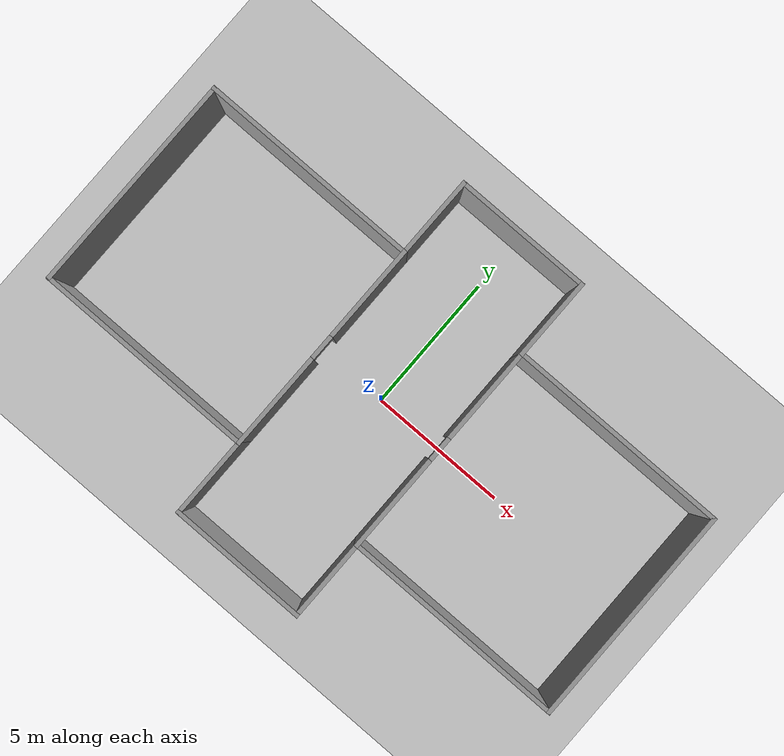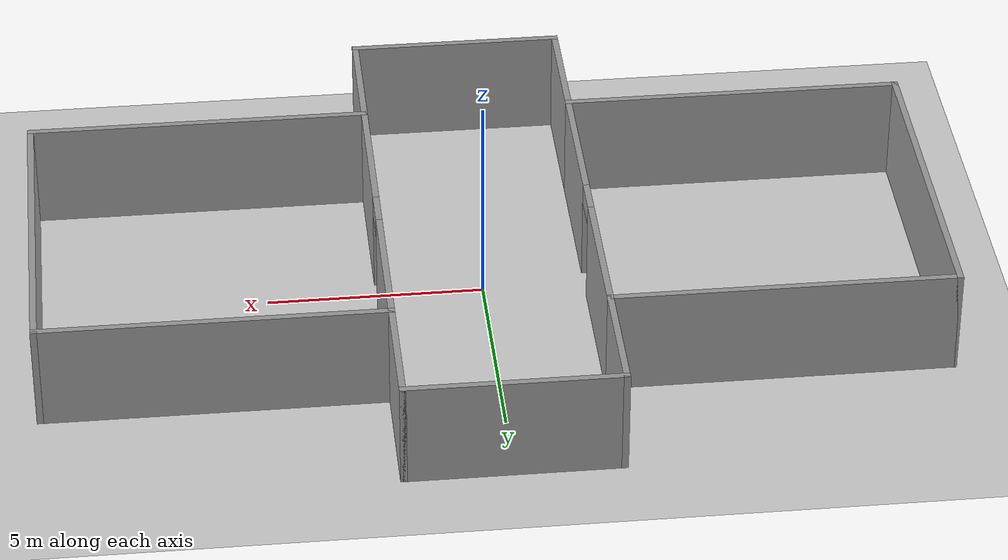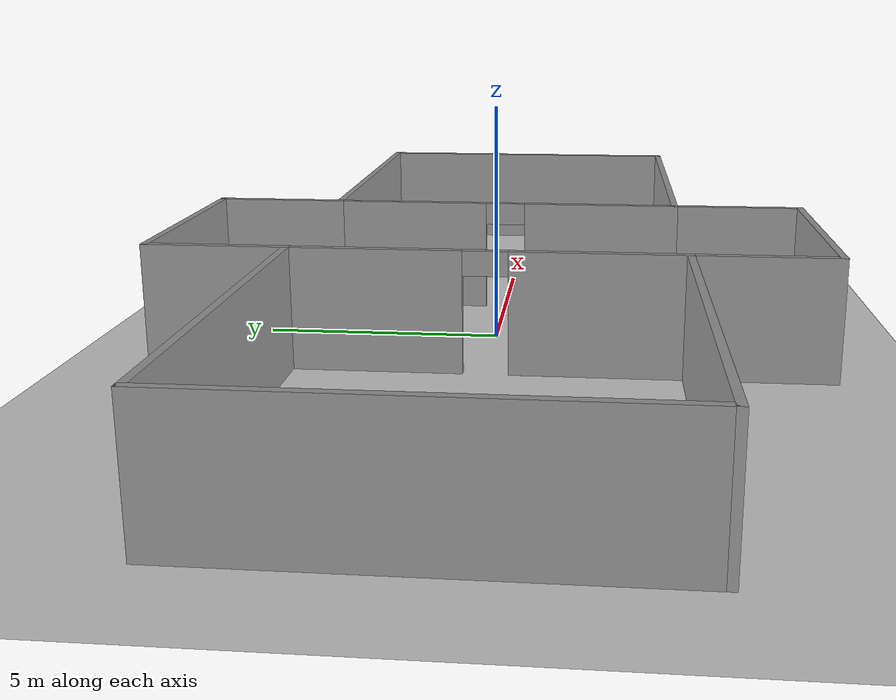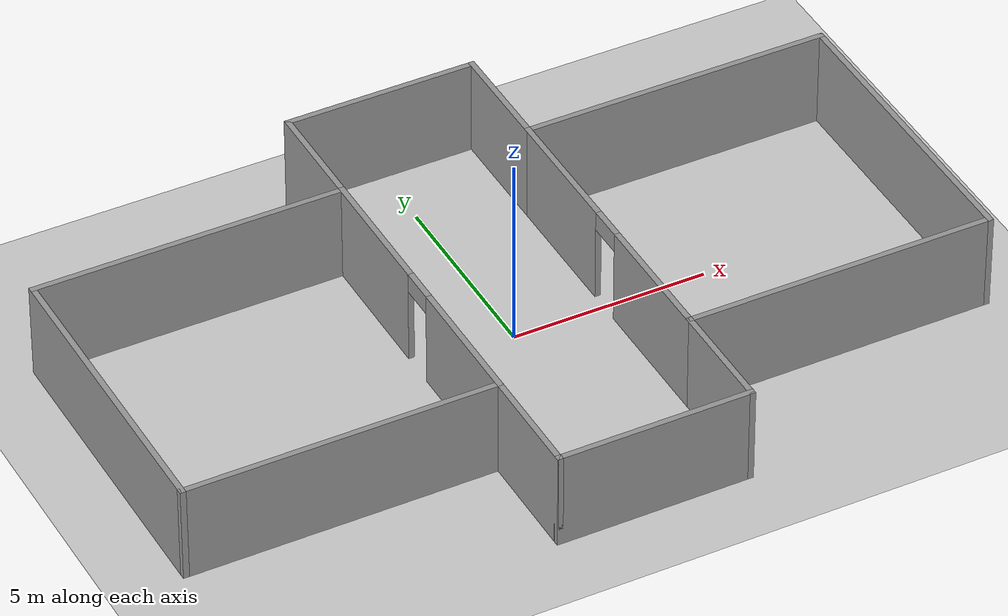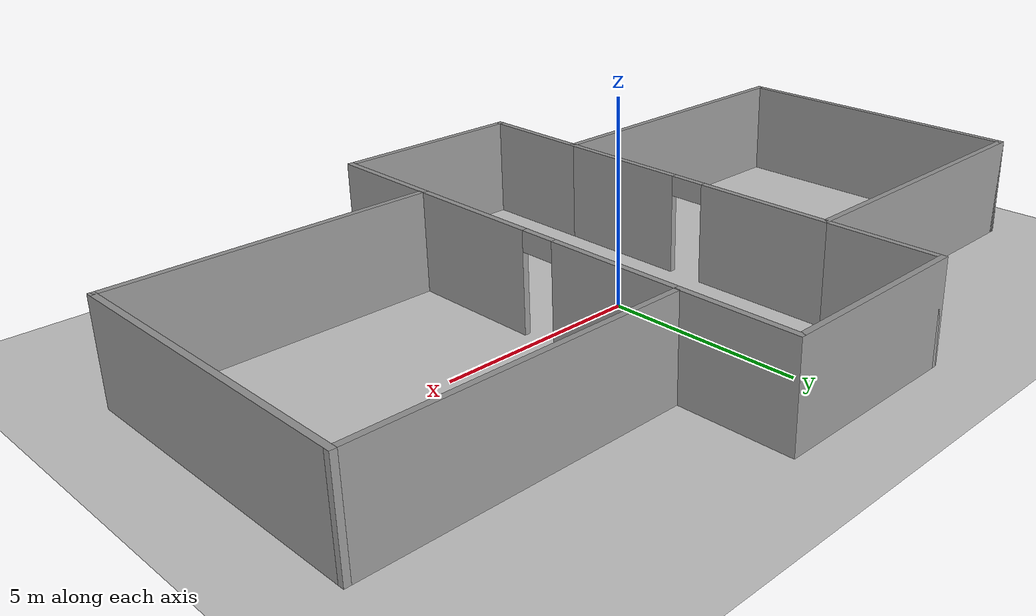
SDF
<sdf version="1.6">
 <world name="default">
  <light name="sun" type="directional">
   <pose>0 0 10 0 -0 0</pose>
   <diffuse>0.8 0.8 0.8 1</diffuse>
   <specular>0.2 0.2 0.2 1</specular>
   <attenuation>
    <range>1000</range>
    <constant>0.9</constant>
    <linear>0.01</linear>
    <quadratic>0.001</quadratic>
   </attenuation>
   <direction>-0.5 0.1 -0.9</direction>
  </light>
  <model name="ground_plane">
   <static>1</static>
   <link name="link">
    <collision name="collision">
     <geometry><plane><normal>0 0 1</normal><size>100 100</size></plane></geometry>
     <surface>
      <contact><collide_bitmask>65535</collide_bitmask></contact>
      <friction><ode><mu>100</mu><mu2>50</mu2></ode></friction>
     </surface>
    </collision>
    <visual name="visual">
     <cast_shadows>0</cast_shadows>
     <geometry><plane><normal>0 0 1</normal><size>100 100</size></plane></geometry>
     <material>
      <script><uri>file://media/materials/scripts/gazebo.material</uri><name>Gazebo/Grey</name></script>
     </material>
    </visual>
   </link>
  </model>
  <gravity>0 0 -9.8</gravity>
  <magnetic_field>6e-06 2.3e-05 -4.2e-05</magnetic_field>
  <atmosphere type="adiabatic"/>
  <physics name="default_physics" default="0" type="ode">
   <max_step_size>0.001</max_step_size>
   <real_time_factor>1</real_time_factor>
   <real_time_update_rate>1000</real_time_update_rate>
  </physics>
  <scene><ambient>0.4 0.4 0.4 1</ambient><background>0.7 0.7 0.7 1</background><shadows>1</shadows></scene>
  <audio><device>default</device></audio>
  <spherical_coordinates>
   <surface_model>EARTH_WGS84</surface_model>
   <latitude_deg>0</latitude_deg>
   <longitude_deg>0</longitude_deg>
   <elevation>0</elevation>
   <heading_deg>0</heading_deg>
  </spherical_coordinates>
  <model name="gazebo_SAGAT_prelim">
   <link name="Wall_11">
    <collision name="Wall_11_Collision">
     <geometry><box><size>3 0.15 2.5</size></box></geometry>
     <pose>0 0 1.25 0 -0 0</pose>
    </collision>
    <visual name="Wall_11_Visual">
     <pose>0 0 1.25 0 -0 0</pose>
     <geometry><box><size>3 0.15 2.5</size></box></geometry>
     <material>
      <script><uri>file://media/materials/scripts/gazebo.material</uri><name>Gazebo/Grey</name></script>
      <ambient>1 1 1 1</ambient>
     </material>
     <meta><layer>0</layer></meta>
    </visual>
    <pose>-2.425 -5.35 0 0 -0 -1.5708</pose>
   </link>
   <link name="Wall_12">
    <collision name="Wall_12_Collision">
     <geometry><box><size>5 0.15 2.5</size></box></geometry>
     <pose>0 0 1.25 0 -0 0</pose>
    </collision>
    <visual name="Wall_12_Visual">
     <pose>0 0 1.25 0 -0 0</pose>
     <geometry><box><size>5 0.15 2.5</size></box></geometry>
     <material>
      <script><uri>file://media/materials/scripts/gazebo.material</uri><name>Gazebo/Grey</name></script>
      <ambient>1 1 1 1</ambient>
     </material>
     <meta><layer>0</layer></meta>
    </visual>
    <pose>-0 -6.775 0 0 -0 0</pose>
   </link>
   <link name="Wall_13">
    <collision name="Wall_13_Collision">
     <geometry><box><size>3 0.15 2.5</size></box></geometry>
     <pose>0 0 1.25 0 -0 0</pose>
    </collision>
    <visual name="Wall_13_Visual">
     <pose>0 0 1.25 0 -0 0</pose>
     <geometry><box><size>3 0.15 2.5</size></box></geometry>
     <material>
      <script><uri>file://media/materials/scripts/gazebo.material</uri><name>Gazebo/Grey</name></script>
      <ambient>1 1 1 1</ambient>
     </material>
     <meta><layer>0</layer></meta>
    </visual>
    <pose>2.425 -5.35 0 0 -0 1.5708</pose>
   </link>
   <link name="Wall_15">
    <collision name="Wall_15_Collision">
     <geometry><box><size>8 0.15 2.5</size></box></geometry>
     <pose>0 0 1.25 0 -0 0</pose>
    </collision>
    <visual name="Wall_15_Visual">
     <pose>0 0 1.25 0 -0 0</pose>
     <geometry><box><size>8 0.15 2.5</size></box></geometry>
     <material>
      <script><uri>file://media/materials/scripts/gazebo.material</uri><name>Gazebo/Grey</name></script>
      <ambient>1 1 1 1</ambient>
     </material>
     <meta><layer>0</layer></meta>
    </visual>
    <pose>6.35 -3.925 0 0 -0 0</pose>
   </link>
   <link name="Wall_16">
    <collision name="Wall_16_Collision">
     <geometry><box><size>8 0.15 2.5</size></box></geometry>
     <pose>0 0 1.25 0 -0 0</pose>
    </collision>
    <visual name="Wall_16_Visual">
     <pose>0 0 1.25 0 -0 0</pose>
     <geometry><box><size>8 0.15 2.5</size></box></geometry>
     <material>
      <script><uri>file://media/materials/scripts/gazebo.material</uri><name>Gazebo/Grey</name></script>
      <ambient>1 1 1 1</ambient>
     </material>
     <meta><layer>0</layer></meta>
    </visual>
    <pose>10.275 0 0 0 -0 1.5708</pose>
   </link>
   <link name="Wall_17">
    <collision name="Wall_17_Collision">
     <geometry><box><size>8 0.15 2.5</size></box></geometry>
     <pose>0 0 1.25 0 -0 0</pose>
    </collision>
    <visual name="Wall_17_Visual">
     <pose>0 0 1.25 0 -0 0</pose>
     <geometry><box><size>8 0.15 2.5</size></box></geometry>
     <material>
      <script><uri>file://media/materials/scripts/gazebo.material</uri><name>Gazebo/Grey</name></script>
      <ambient>1 1 1 1</ambient>
     </material>
     <meta><layer>0</layer></meta>
    </visual>
    <pose>6.35 3.925 0 0 -0 3.14159</pose>
   </link>
   <link name="Wall_18">
    <pose>2.425 0 0 0 -0 -1.5708</pose>
    <visual name="Wall_18_Visual_0">
     <pose>-2.22426 0 1.25 0 -0 0</pose>
     <geometry><box><size>3.55147 0.15 2.5</size></box></geometry>
     <material>
      <script><uri>file://media/materials/scripts/gazebo.material</uri><name>Gazebo/Grey</name></script>
      <ambient>1 1 1 1</ambient>
     </material>
     <meta><layer>0</layer></meta>
    </visual>
    <collision name="Wall_18_Collision_0">
     <geometry><box><size>3.55147 0.15 2.5</size></box></geometry>
     <pose>-2.22426 0 1.25 0 -0 0</pose>
    </collision>
    <visual name="Wall_18_Visual_1">
     <pose>2.22574 0 1.25 0 -0 0</pose>
     <geometry><box><size>3.54853 0.15 2.5</size></box></geometry>
     <material>
      <script><uri>file://media/materials/scripts/gazebo.material</uri><name>Gazebo/Grey</name></script>
      <ambient>1 1 1 1</ambient>
     </material>
     <meta><layer>0</layer></meta>
    </visual>
    <collision name="Wall_18_Collision_1">
     <geometry><box><size>3.54853 0.15 2.5</size></box></geometry>
     <pose>2.22574 0 1.25 0 -0 0</pose>
    </collision>
    <visual name="Wall_18_Visual_2">
     <pose>0.001474 0 2.25 0 -0 0</pose>
     <geometry><box><size>0.9 0.15 0.5</size></box></geometry>
     <material>
      <script><uri>file://media/materials/scripts/gazebo.material</uri><name>Gazebo/Grey</name></script>
      <ambient>1 1 1 1</ambient>
     </material>
     <meta><layer>0</layer></meta>
    </visual>
    <collision name="Wall_18_Collision_2">
     <geometry><box><size>0.9 0.15 0.5</size></box></geometry>
     <pose>0.001474 0 2.25 0 -0 0</pose>
    </collision>
   </link>
   <link name="Wall_25">
    <collision name="Wall_25_Collision">
     <geometry><box><size>3 0.15 2.5</size></box></geometry>
     <pose>0 0 1.25 0 -0 0</pose>
    </collision>
    <visual name="Wall_25_Visual">
     <pose>0 0 1.25 0 -0 0</pose>
     <geometry><box><size>3 0.15 2.5</size></box></geometry>
     <material>
      <script><uri>file://media/materials/scripts/gazebo.material</uri><name>Gazebo/Grey</name></script>
      <ambient>1 1 1 1</ambient>
     </material>
     <meta><layer>0</layer></meta>
    </visual>
    <pose>-2.425 5.35 0 0 -0 1.5708</pose>
   </link>
   <link name="Wall_26">
    <collision name="Wall_26_Collision">
     <geometry><box><size>5 0.15 2.5</size></box></geometry>
     <pose>0 0 1.25 0 -0 0</pose>
    </collision>
    <visual name="Wall_26_Visual">
     <pose>0 0 1.25 0 -0 0</pose>
     <geometry><box><size>5 0.15 2.5</size></box></geometry>
     <material>
      <script><uri>file://media/materials/scripts/gazebo.material</uri><name>Gazebo/Grey</name></script>
      <ambient>1 1 1 1</ambient>
     </material>
     <meta><layer>0</layer></meta>
    </visual>
    <pose>-0 6.775 0 0 -0 0</pose>
   </link>
   <link name="Wall_27">
    <collision name="Wall_27_Collision">
     <geometry><box><size>3 0.15 2.5</size></box></geometry>
     <pose>0 0 1.25 0 -0 0</pose>
    </collision>
    <visual name="Wall_27_Visual">
     <pose>0 0 1.25 0 -0 0</pose>
     <geometry><box><size>3 0.15 2.5</size></box></geometry>
     <material>
      <script><uri>file://media/materials/scripts/gazebo.material</uri><name>Gazebo/Grey</name></script>
      <ambient>1 1 1 1</ambient>
     </material>
     <meta><layer>0</layer></meta>
    </visual>
    <pose>2.425 5.35 0 0 -0 -1.5708</pose>
   </link>
   <link name="Wall_6">
    <collision name="Wall_6_Collision">
     <geometry><box><size>8 0.15 2.5</size></box></geometry>
     <pose>0 0 1.25 0 -0 0</pose>
    </collision>
    <visual name="Wall_6_Visual">
     <pose>0 0 1.25 0 -0 0</pose>
     <geometry><box><size>8 0.15 2.5</size></box></geometry>
     <material>
      <script><uri>file://media/materials/scripts/gazebo.material</uri><name>Gazebo/Grey</name></script>
      <ambient>1 1 1 1</ambient>
     </material>
     <meta><layer>0</layer></meta>
    </visual>
    <pose>-10.275 0 0 0 -0 1.5708</pose>
   </link>
   <link name="Wall_7">
    <collision name="Wall_7_Collision">
     <geometry><box><size>8 0.15 2.5</size></box></geometry>
     <pose>0 0 1.25 0 -0 0</pose>
    </collision>
    <visual name="Wall_7_Visual">
     <pose>0 0 1.25 0 -0 0</pose>
     <geometry><box><size>8 0.15 2.5</size></box></geometry>
     <material>
      <script><uri>file://media/materials/scripts/gazebo.material</uri><name>Gazebo/Grey</name></script>
      <ambient>1 1 1 1</ambient>
     </material>
     <meta><layer>0</layer></meta>
    </visual>
    <pose>-6.35 3.925 0 0 -0 0</pose>
   </link>
   <link name="Wall_8">
    <pose>-2.425 0 0 0 -0 -1.5708</pose>
    <visual name="Wall_8_Visual_0">
     <pose>-2.22426 0 1.25 0 -0 0</pose>
     <geometry><box><size>3.55147 0.15 2.5</size></box></geometry>
     <material>
      <script><uri>file://media/materials/scripts/gazebo.material</uri><name>Gazebo/Grey</name></script>
      <ambient>1 1 1 1</ambient>
     </material>
     <meta><layer>0</layer></meta>
    </visual>
    <collision name="Wall_8_Collision_0">
     <geometry><box><size>3.55147 0.15 2.5</size></box></geometry>
     <pose>-2.22426 0 1.25 0 -0 0</pose>
    </collision>
    <visual name="Wall_8_Visual_1">
     <pose>2.22574 0 1.25 0 -0 0</pose>
     <geometry><box><size>3.54853 0.15 2.5</size></box></geometry>
     <material>
      <script><uri>file://media/materials/scripts/gazebo.material</uri><name>Gazebo/Grey</name></script>
      <ambient>1 1 1 1</ambient>
     </material>
     <meta><layer>0</layer></meta>
    </visual>
    <collision name="Wall_8_Collision_1">
     <geometry><box><size>3.54853 0.15 2.5</size></box></geometry>
     <pose>2.22574 0 1.25 0 -0 0</pose>
    </collision>
    <visual name="Wall_8_Visual_2">
     <pose>0.001474 0 2.25 0 -0 0</pose>
     <geometry><box><size>0.9 0.15 0.5</size></box></geometry>
     <material>
      <script><uri>file://media/materials/scripts/gazebo.material</uri><name>Gazebo/Grey</name></script>
      <ambient>1 1 1 1</ambient>
     </material>
     <meta><layer>0</layer></meta>
    </visual>
    <collision name="Wall_8_Collision_2">
     <geometry><box><size>0.9 0.15 0.5</size></box></geometry>
     <pose>0.001474 0 2.25 0 -0 0</pose>
    </collision>
   </link>
   <link name="Wall_9">
    <collision name="Wall_9_Collision">
     <geometry><box><size>8 0.15 2.5</size></box></geometry>
     <pose>0 0 1.25 0 -0 0</pose>
    </collision>
    <visual name="Wall_9_Visual">
     <pose>0 0 1.25 0 -0 0</pose>
     <geometry><box><size>8 0.15 2.5</size></box></geometry>
     <material>
      <script><uri>file://media/materials/scripts/gazebo.material</uri><name>Gazebo/Grey</name></script>
      <ambient>1 1 1 1</ambient>
     </material>
     <meta><layer>0</layer></meta>
    </visual>
    <pose>-6.35 -3.925 0 0 -0 3.14159</pose>
   </link>
   <static>1</static>
  </model>
 </world>
</sdf>
